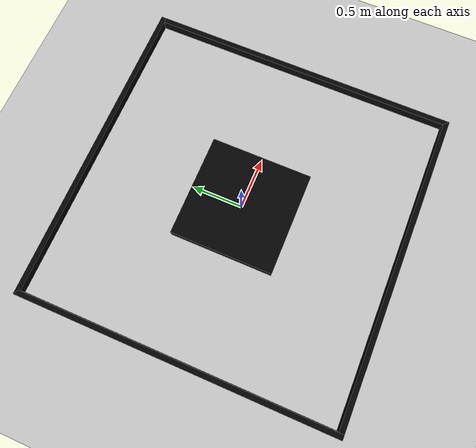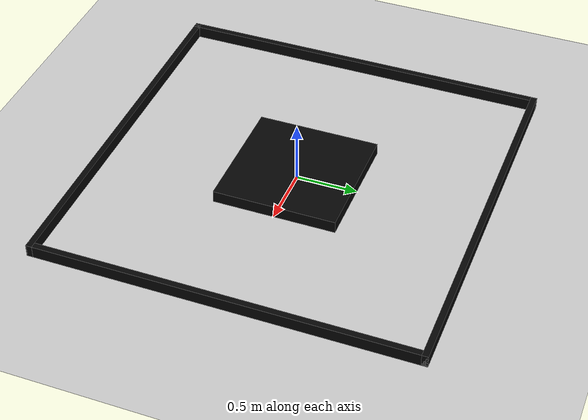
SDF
<?xml version="1.0"?>
<sdf version="1.6">
  <world name="open_round_world">

    <!-- ===== 1. LIGHTING & PHYSICS ===== -->
    <include><uri>model://sun</uri></include>
    <include><uri>model://ground_plane</uri></include>

    <!-- ROS 2 state interface: lets the launch/controller place the robot
         exactly at the random start pose and read its world pose. -->
    <plugin name="gazebo_ros_state" filename="libgazebo_ros_state.so">
      <ros>
        <namespace>/</namespace>
      </ros>
      <update_rate>30.0</update_rate>
    </plugin>

    <physics name="default_physics" type="ode">
      <max_step_size>0.001</max_step_size>
      <real_time_factor>1.0</real_time_factor>
      <real_time_update_rate>1000.0</real_time_update_rate>
    </physics>

    <!-- camera: elevated view of the whole 3 x 3 m ring -->
    <gui>
      <camera name="user_camera">
        <pose>0 -4.6 3.6 0 0.68 1.5708</pose>
      </camera>
    </gui>

    <!-- ===== 2. OUTER WALLS (inner faces at +-1.5 m) ===== -->
    <model name="wall_north">
      <static>true</static>
      <pose>0.0 1.525 0.05 0 0 0</pose>
      <link name="link">
        <collision name="collision"><geometry><box><size>3.1 0.05 0.1</size></box></geometry></collision>
        <visual name="visual">
          <geometry><box><size>3.1 0.05 0.1</size></box></geometry>
          <material><ambient>0.02 0.02 0.02 1</ambient><diffuse>0.02 0.02 0.02 1</diffuse></material>
        </visual>
      </link>
    </model>

    <model name="wall_south">
      <static>true</static>
      <pose>0.0 -1.525 0.05 0 0 0</pose>
      <link name="link">
        <collision name="collision"><geometry><box><size>3.1 0.05 0.1</size></box></geometry></collision>
        <visual name="visual">
          <geometry><box><size>3.1 0.05 0.1</size></box></geometry>
          <material><ambient>0.02 0.02 0.02 1</ambient><diffuse>0.02 0.02 0.02 1</diffuse></material>
        </visual>
      </link>
    </model>

    <model name="wall_east">
      <static>true</static>
      <pose>1.525 0.0 0.05 0 0 0</pose>
      <link name="link">
        <collision name="collision"><geometry><box><size>0.05 3.1 0.1</size></box></geometry></collision>
        <visual name="visual">
          <geometry><box><size>0.05 3.1 0.1</size></box></geometry>
          <material><ambient>0.02 0.02 0.02 1</ambient><diffuse>0.02 0.02 0.02 1</diffuse></material>
        </visual>
      </link>
    </model>

    <model name="wall_west">
      <static>true</static>
      <pose>-1.525 0.0 0.05 0 0 0</pose>
      <link name="link">
        <collision name="collision"><geometry><box><size>0.05 3.1 0.1</size></box></geometry></collision>
        <visual name="visual">
          <geometry><box><size>0.05 3.1 0.1</size></box></geometry>
          <material><ambient>0.02 0.02 0.02 1</ambient><diffuse>0.02 0.02 0.02 1</diffuse></material>
        </visual>
      </link>
    </model>

    <!-- ===== 3. INNER BLOCK (outer faces at +-0.5 m) ===== -->
    <model name="inner_block">
      <static>true</static>
      <pose>0.0 0.0 0.05 0 0 0</pose>
      <link name="link">
        <collision name="collision"><geometry><box><size>1.0 1.0 0.1</size></box></geometry></collision>
        <visual name="visual">
          <geometry><box><size>1.0 1.0 0.1</size></box></geometry>
          <material><ambient>0.02 0.02 0.02 1</ambient><diffuse>0.02 0.02 0.02 1</diffuse></material>
        </visual>
      </link>
    </model>

  </world>
</sdf>
